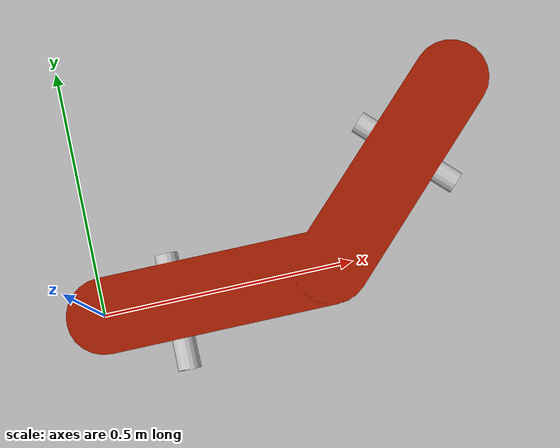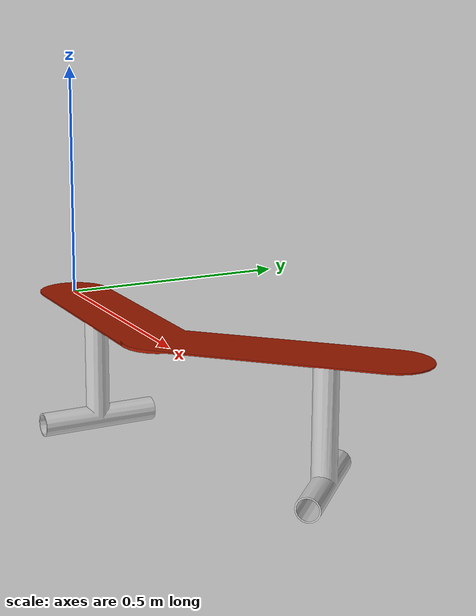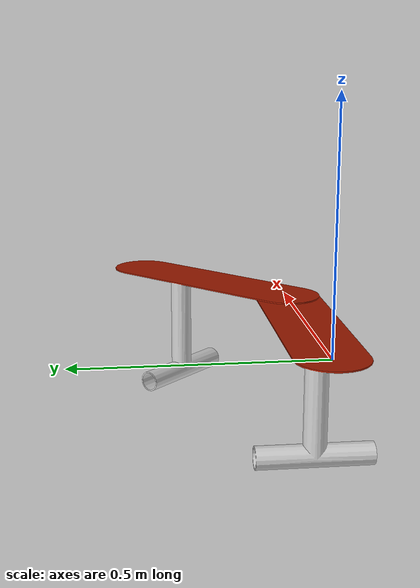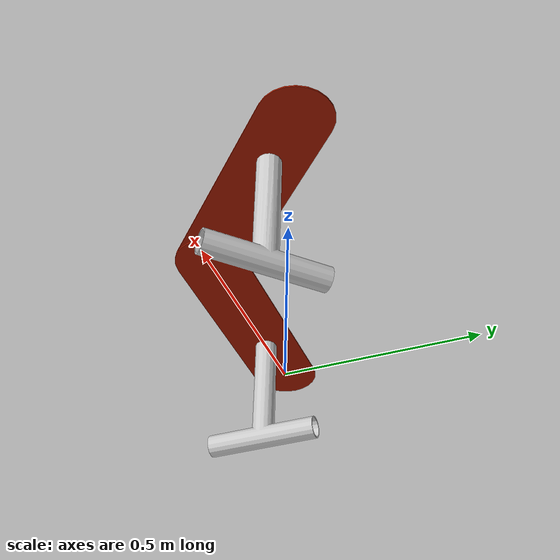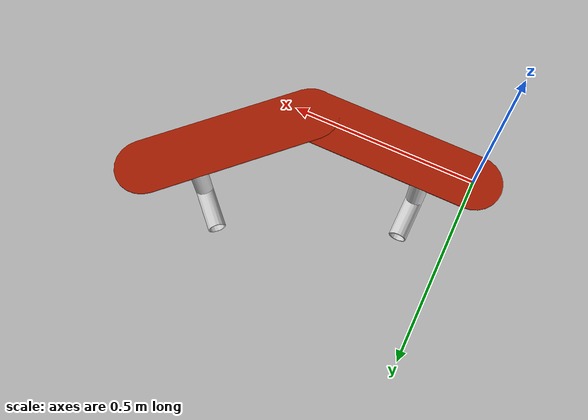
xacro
<robot
  name="PathMarker_robot">
  <link
    name="PathMarker_link">
    <inertial>
      <origin
        xyz="0.41608 0.099278 -0.093901"
        rpy="0 0 0" />
      <mass
        value="0.01482" />
      <inertia
        ixx="0.0325532246844383"
        ixy="0.031316880775089"
        ixz="0.00124326094393445"
        iyy="0.0951869546300968"
        iyz="0.00176581385028333"
        izz="0.0988406120595301" />
    </inertial>
    <visual>
      <origin
        xyz="0 0 0"
        rpy="1.5707963267949 0 0" />
      <geometry>
        <mesh
          filename="package://robosub_descriptions/meshes/PathMarker.dae" />
      </geometry>
    </visual>
    <collision>
      <origin
        xyz="0 0 0"
        rpy="1.5707963267949 0 0" />
      <geometry>
        <mesh
          filename="package://robosub_descriptions/meshes/PathMarker.stl" />
      </geometry>
    </collision>
  </link>
  <gazebo reference="PathMarker_link">
      <turnGravityOff>false</turnGravityOff>
  </gazebo>
</robot>
